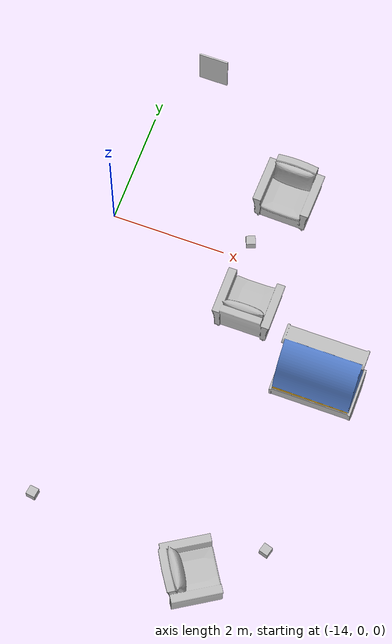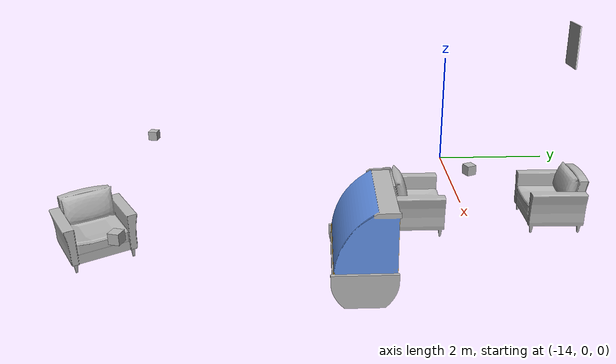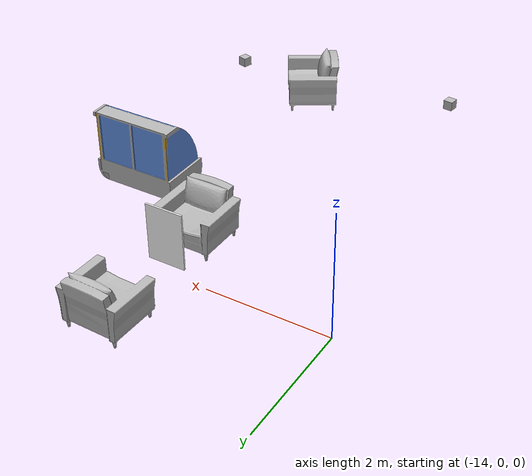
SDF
<sdf version="1.4">
 <world name="default">
  <model name="armchair">
   <static>1</static>
   <pose>-11.6106 0.839206 0 0 -0 1.54611</pose>
   <link name="body">
    <inertial>
     <mass>5</mass>
     <inertia><ixx>1</ixx><ixy>0</ixy><iyy>1</iyy><ixz>0</ixz><iyz>0</iyz><izz>1</izz></inertia>
    </inertial>
    <collision name="collision">
     <geometry><mesh><uri>model://armchair/meshes/armchair.dae</uri></mesh></geometry>
    </collision>
    <visual name="visual">
     <geometry><mesh><uri>model://armchair/meshes/armchair.dae</uri></mesh></geometry>
    </visual>
    <velocity_decay><linear>0</linear><angular>0</angular></velocity_decay>
   </link>
  </model>
  <model name="armchair_0">
   <static>1</static>
   <pose>-10.9107 -0.5043 0 0 0 -1.5708</pose>
   <link name="body">
    <inertial>
     <mass>5</mass>
     <inertia><ixx>1</ixx><ixy>0</ixy><iyy>1</iyy><ixz>0</ixz><iyz>0</iyz><izz>1</izz></inertia>
    </inertial>
    <collision name="collision">
     <geometry><mesh><uri>model://armchair/meshes/armchair.dae</uri></mesh></geometry>
    </collision>
    <visual name="visual">
     <geometry><mesh><uri>model://armchair/meshes/armchair.dae</uri></mesh></geometry>
    </visual>
    <velocity_decay><linear>0</linear><angular>0</angular></velocity_decay>
   </link>
  </model>
  <model name="armchair_4">
   <static>1</static>
   <pose>-10.0003 -5.64243 0 0 0 -2.58139</pose>
   <link name="body">
    <inertial>
     <mass>5</mass>
     <inertia><ixx>1</ixx><ixy>0</ixy><iyy>1</iyy><ixz>0</ixz><iyz>0</iyz><izz>1</izz></inertia>
    </inertial>
    <collision name="collision">
     <geometry><mesh><uri>model://armchair/meshes/armchair.dae</uri></mesh></geometry>
    </collision>
    <visual name="visual">
     <geometry><mesh><uri>model://armchair/meshes/armchair.dae</uri></mesh></geometry>
    </visual>
    <velocity_decay><linear>0</linear><angular>0</angular></velocity_decay>
   </link>
  </model>
  <model name="showcase">
   <static>1</static>
   <pose>-8.99939 -1.38169 0 0 -0 3.14159</pose>
   <link name="body">
    <inertial>
     <mass>5</mass>
     <inertia><ixx>1</ixx><ixy>0</ixy><iyy>1</iyy><ixz>0</ixz><iyz>0</iyz><izz>1</izz></inertia>
    </inertial>
    <collision name="collision">
     <geometry><mesh><uri>model://showcase/meshes/showcase.dae</uri></mesh></geometry>
    </collision>
    <visual name="visual">
     <geometry><mesh><uri>model://showcase/meshes/showcase.dae</uri></mesh></geometry>
    </visual>
    <velocity_decay><linear>0</linear><angular>0</angular></velocity_decay>
   </link>
  </model>
  <model name="dashed_picture">
   <static>1</static>
   <pose>-13.1607 1.98849 2.09935 1.5708 -0 0</pose>
   <link name="body">
    <inertial>
     <mass>5</mass>
     <inertia><ixx>1</ixx><ixy>0</ixy><iyy>1</iyy><ixz>0</ixz><iyz>0</iyz><izz>1</izz></inertia>
    </inertial>
    <collision name="collision">
     <geometry><mesh><uri>model://dashed_picture/meshes/dashed_picture.dae</uri></mesh></geometry>
    </collision>
    <visual name="visual">
     <geometry><mesh><uri>model://dashed_picture/meshes/dashed_picture.dae</uri></mesh></geometry>
    </visual>
    <velocity_decay><linear>0</linear><angular>0</angular></velocity_decay>
   </link>
  </model>
  <model name="box">
   <static>1</static>
   <pose>-11.5671 -0.102439 0.729473 0 -0 0.399654</pose>
   <link name="body">
    <inertial>
     <mass>5</mass>
     <inertia><ixx>1</ixx><ixy>0</ixy><iyy>1</iyy><ixz>0</ixz><iyz>0</iyz><izz>1</izz></inertia>
    </inertial>
    <collision name="collision">
     <geometry><mesh><uri>model://box/meshes/box.dae</uri></mesh></geometry>
    </collision>
    <visual name="visual"><geometry><mesh><uri>model://box/meshes/box.dae</uri></mesh></geometry></visual>
    <velocity_decay><linear>0</linear><angular>0</angular></velocity_decay>
   </link>
  </model>
  <model name="box_0">
   <static>1</static>
   <pose>-13.3849 -5.40263 0.739411 0 0 -0.134064</pose>
   <link name="body">
    <inertial>
     <mass>5</mass>
     <inertia><ixx>1</ixx><ixy>0</ixy><iyy>1</iyy><ixz>0</ixz><iyz>0</iyz><izz>1</izz></inertia>
    </inertial>
    <collision name="collision">
     <geometry><mesh><uri>model://box/meshes/box.dae</uri></mesh></geometry>
    </collision>
    <visual name="visual"><geometry><mesh><uri>model://box/meshes/box.dae</uri></mesh></geometry></visual>
    <velocity_decay><linear>0</linear><angular>0</angular></velocity_decay>
   </link>
  </model>
  <model name="box_1">
   <static>1</static>
   <pose>-9.59378 -5.00953 0.734111 0 0 -0.278177</pose>
   <link name="body">
    <inertial>
     <mass>5</mass>
     <inertia><ixx>1</ixx><ixy>0</ixy><iyy>1</iyy><ixz>0</ixz><iyz>0</iyz><izz>1</izz></inertia>
    </inertial>
    <collision name="collision">
     <geometry><mesh><uri>model://box/meshes/box.dae</uri></mesh></geometry>
    </collision>
    <visual name="visual"><geometry><mesh><uri>model://box/meshes/box.dae</uri></mesh></geometry></visual>
    <velocity_decay><linear>0</linear><angular>0</angular></velocity_decay>
   </link>
  </model>
 </world>
</sdf>
